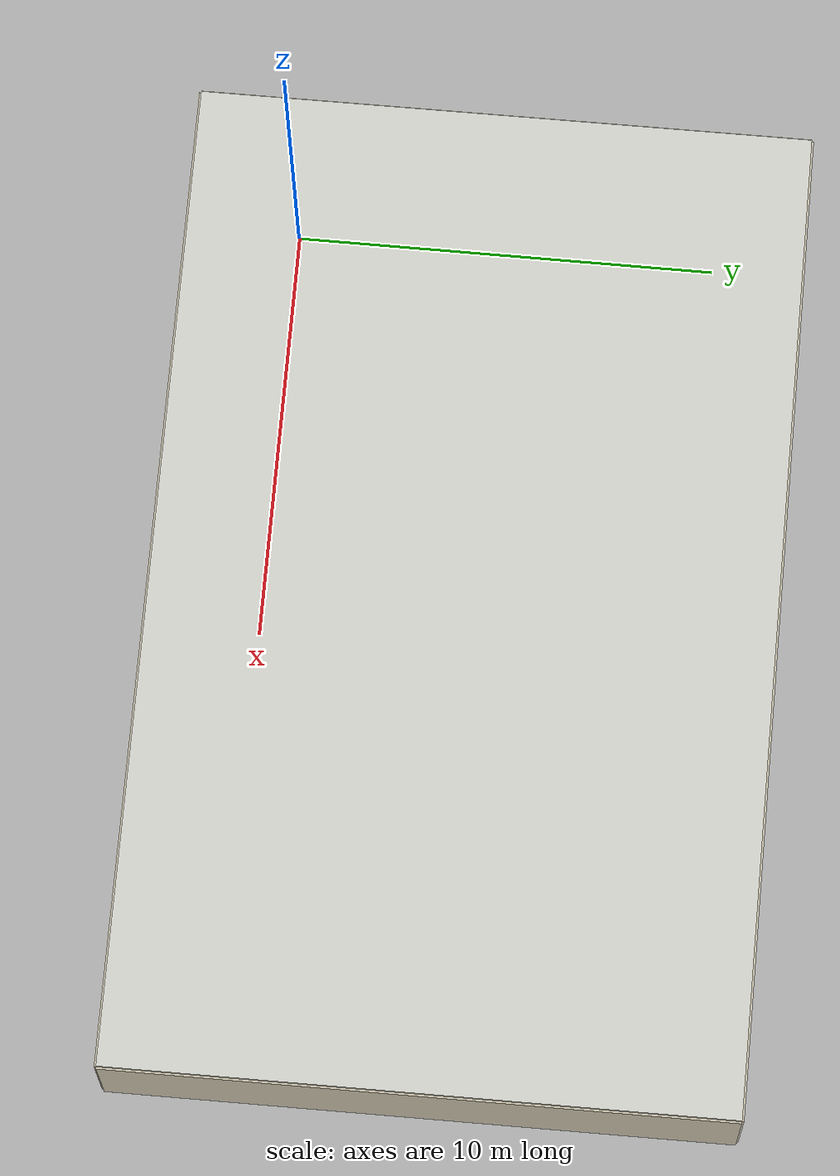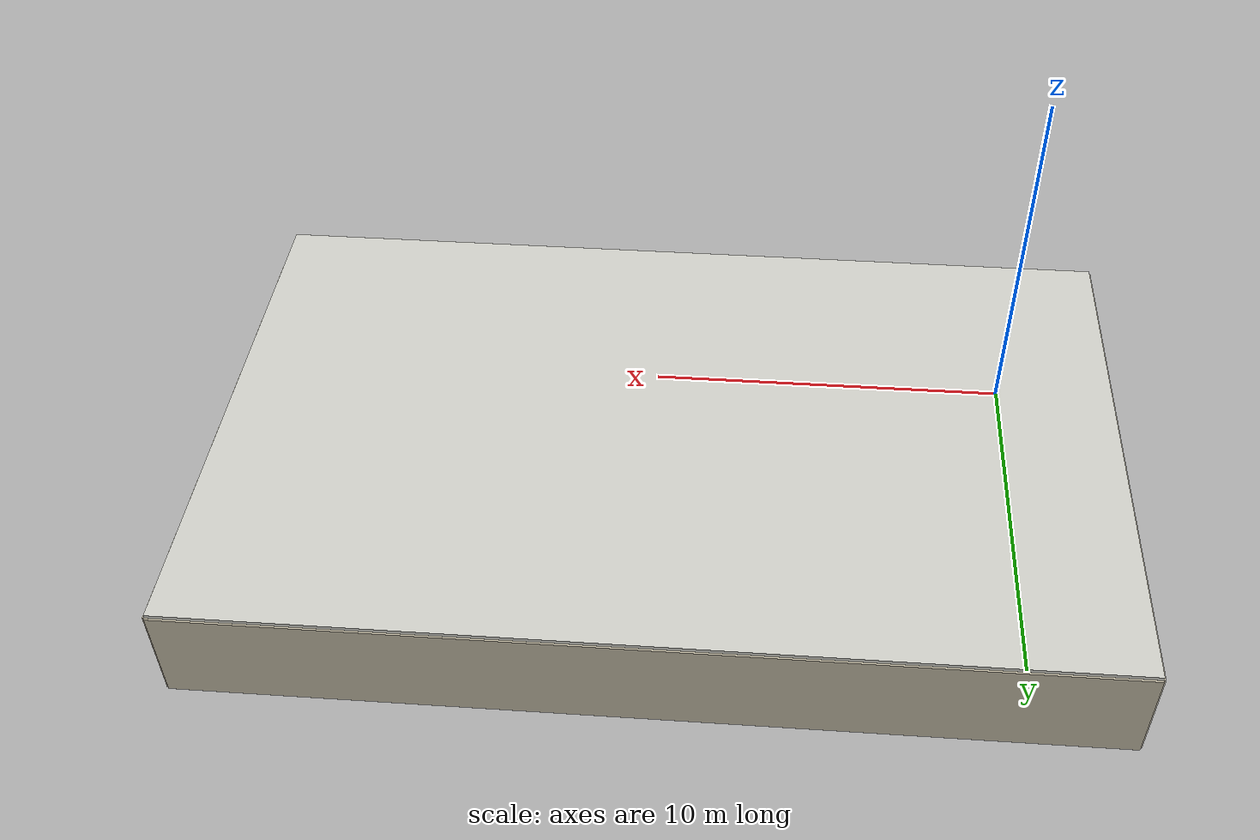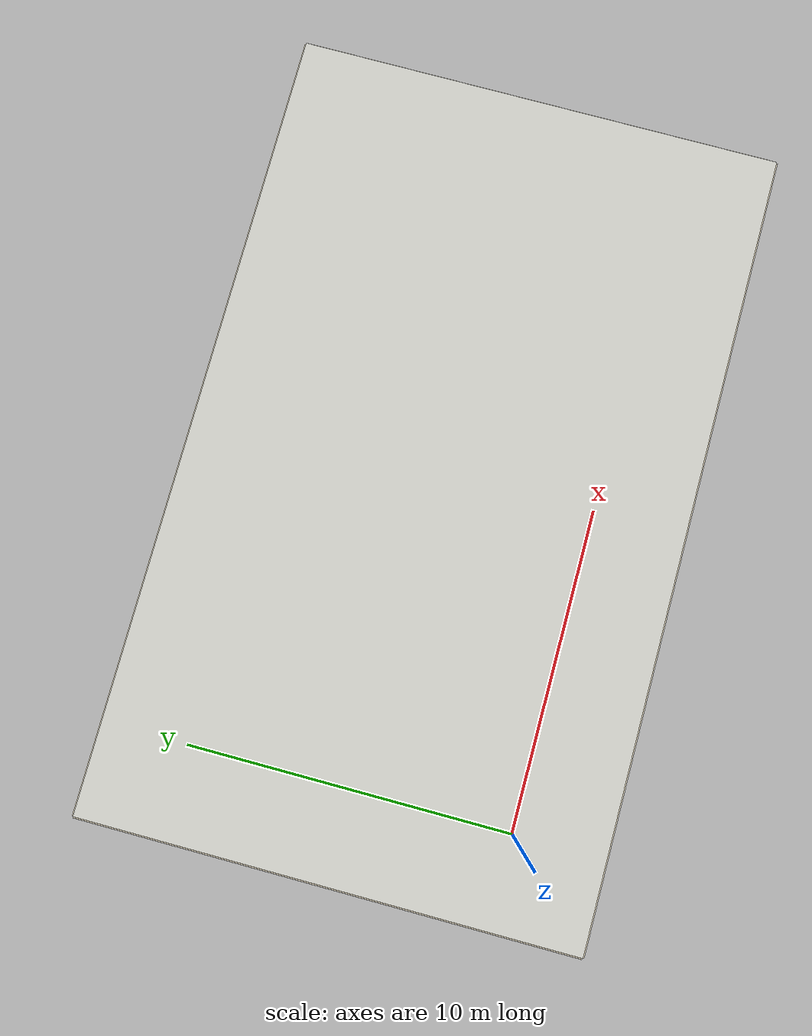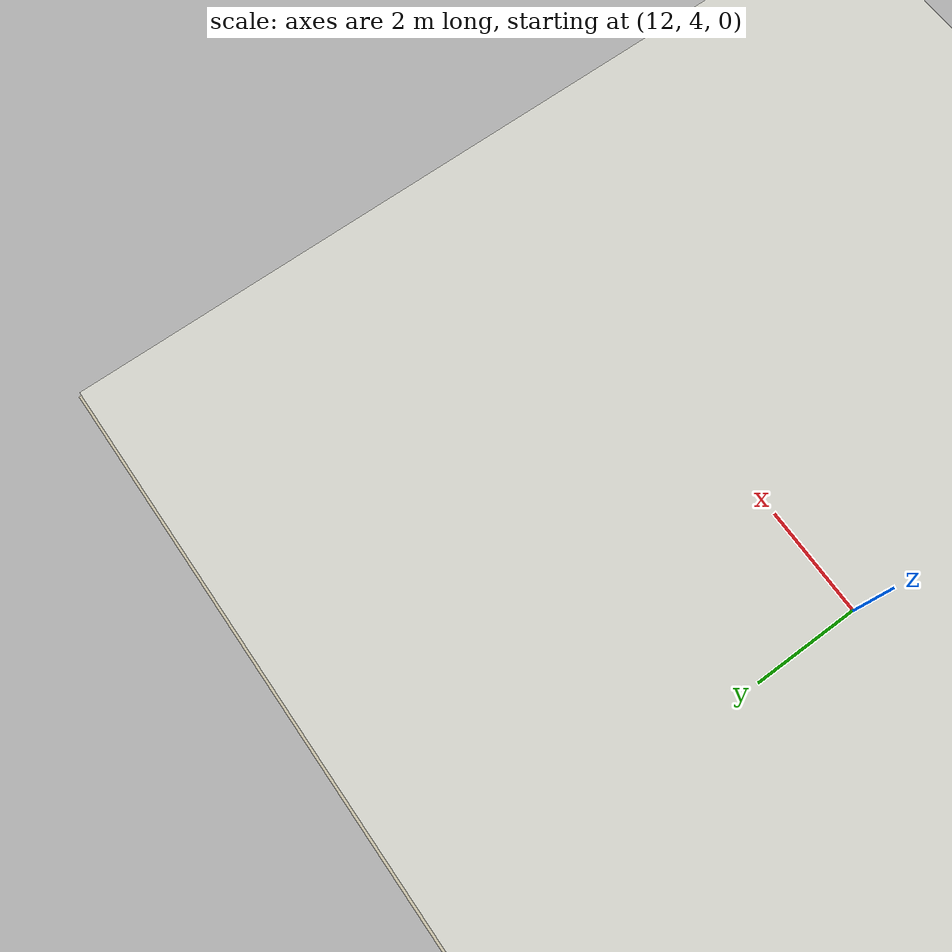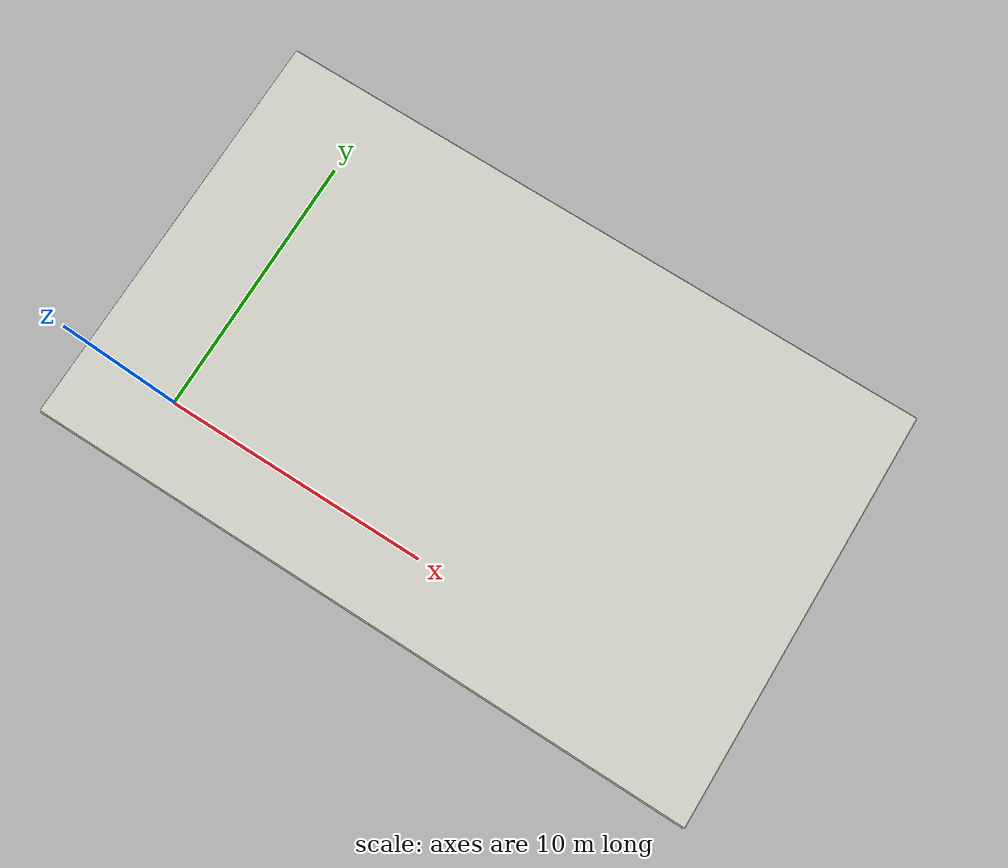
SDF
<?xml version="1.0" ?>
<sdf version='1.7'>
  <world name='default'>
    <plugin name='gazebo_ros_state' filename='libgazebo_ros_state.so'>
      <ros>
        <namespace>/</namespace>
      </ros>
      <update_rate>1000.0</update_rate>
    </plugin>

    <light name='sun' type='directional'>
      <cast_shadows>1</cast_shadows>
      <pose>0 0 10 0 -0 0</pose>
      <diffuse>0.15 0.15 0.14 1</diffuse>
      <specular>0.2 0.2 0.2 1</specular>
      <attenuation>
        <range>1000</range>
        <constant>0.9</constant>
        <linear>0.01</linear>
        <quadratic>0.001</quadratic>
      </attenuation>
      <direction>0.05 0.02 -1.0</direction>
      <spot>
        <inner_angle>0</inner_angle>
        <outer_angle>0</outer_angle>
        <falloff>0</falloff>
      </spot>
    </light>
    <model name='ground_plane'>
      <static>1</static>
      <link name='link'>
        <collision name='collision'>
          <geometry>
            <plane>
              <normal>0 0 1</normal>
              <size>100 100</size>
            </plane>
          </geometry>
          <surface>
            <friction>
              <ode>
                <mu>100</mu>
                <mu2>50</mu2>
              </ode>
              <torsional>
                <ode/>
              </torsional>
            </friction>
            <contact>
              <ode/>
            </contact>
            <bounce/>
          </surface>
          <max_contacts>10</max_contacts>
        </collision>
        <self_collide>0</self_collide>
        <enable_wind>0</enable_wind>
        <kinematic>0</kinematic>
      </link>
    </model>
    <gravity>0 0 -9.8</gravity>
    <magnetic_field>6e-06 2.3e-05 -4.2e-05</magnetic_field>
    <atmosphere type='adiabatic'/>
    <physics type='ode'>
      <max_step_size>0.001</max_step_size>
      <real_time_factor>1</real_time_factor>
      <real_time_update_rate>1000</real_time_update_rate>
    </physics>
    <scene>
      <ambient>0.84 0.84 0.82 1</ambient>
      <background>0.80 0.77 0.68 1</background>
      <shadows>1</shadows>
    </scene>
    <audio>
      <device>default</device>
    </audio>
    <wind/>
    <spherical_coordinates>
      <surface_model>EARTH_WGS84</surface_model>
      <latitude_deg>0</latitude_deg>
      <longitude_deg>0</longitude_deg>
      <elevation>0</elevation>
      <heading_deg>0</heading_deg>
    </spherical_coordinates>
    <model name='lab_16'>
    <static>1</static>
    <pose>0 0 0.001 0 0 0</pose>
    <link name='floor'>
      <visual name='floor_visual'>
        <cast_shadows>0</cast_shadows>
        <geometry><mesh><uri>model://lab_16/meshes/floor.obj</uri></mesh></geometry>
      </visual>
    </link>
    <link name='ducts'>
      <visual name='ducts_visual'>
        <geometry><mesh><uri>model://lab_16/meshes/ducts.obj</uri></mesh></geometry>
      </visual>
      <collision name='ducts_collision'>
        <geometry><mesh><uri>model://lab_16/meshes/ducts.obj</uri></mesh></geometry>
      </collision>
    </link>
    <link name='wall_0'>
      <pose>9.332 12.082 1.350 0 0 0.000</pose>
      <visual name='wall_0_visual'>
        <cast_shadows>0</cast_shadows>
        <geometry><box><size>23.646 0.100 2.700</size></box></geometry>
        <material><ambient>0.80 0.77 0.68 1</ambient><diffuse>0.80 0.77 0.68 1</diffuse></material>
      </visual>
    </link>
    <link name='wall_1'>
      <pose>9.332 -2.497 1.350 0 0 0.000</pose>
      <visual name='wall_1_visual'>
        <cast_shadows>0</cast_shadows>
        <geometry><box><size>23.646 0.100 2.700</size></box></geometry>
        <material><ambient>0.80 0.77 0.68 1</ambient><diffuse>0.80 0.77 0.68 1</diffuse></material>
      </visual>
    </link>
    <link name='wall_2'>
      <pose>-2.491 4.792 1.350 0 0 0.000</pose>
      <visual name='wall_2_visual'>
        <cast_shadows>0</cast_shadows>
        <geometry><box><size>0.100 14.579 2.700</size></box></geometry>
        <material><ambient>0.80 0.77 0.68 1</ambient><diffuse>0.80 0.77 0.68 1</diffuse></material>
      </visual>
    </link>
    <link name='wall_3'>
      <pose>21.155 4.792 1.350 0 0 0.000</pose>
      <visual name='wall_3_visual'>
        <cast_shadows>0</cast_shadows>
        <geometry><box><size>0.100 14.579 2.700</size></box></geometry>
        <material><ambient>0.80 0.77 0.68 1</ambient><diffuse>0.80 0.77 0.68 1</diffuse></material>
      </visual>
    </link>
    <link name='ceiling'>
      <pose>9.332 4.792 2.750 0 0 0.000</pose>
      <visual name='ceiling_visual'>
        <cast_shadows>0</cast_shadows>
        <geometry><box><size>23.646 14.579 0.100</size></box></geometry>
        <material><ambient>0.85 0.85 0.82 1</ambient><diffuse>0.85 0.85 0.82 1</diffuse></material>
      </visual>
    </link>
    <link name='panel_0_0'>
      <pose>-0.991 -0.997 2.690 0 0 0.000</pose>
      <visual name='panel_0_0_visual'>
        <cast_shadows>0</cast_shadows>
        <geometry><box><size>1.200 0.600 0.020</size></box></geometry>
        <material><ambient>1.00 1.00 1.00 1</ambient><diffuse>1.00 1.00 1.00 1</diffuse><emissive>1.00 1.00 1.00 1</emissive></material>
      </visual>
    </link>
    <link name='panel_0_1'>
      <pose>-0.991 1.403 2.690 0 0 0.000</pose>
      <visual name='panel_0_1_visual'>
        <cast_shadows>0</cast_shadows>
        <geometry><box><size>1.200 0.600 0.020</size></box></geometry>
        <material><ambient>1.00 1.00 1.00 1</ambient><diffuse>1.00 1.00 1.00 1</diffuse><emissive>1.00 1.00 1.00 1</emissive></material>
      </visual>
    </link>
    <link name='panel_0_2'>
      <pose>-0.991 3.803 2.690 0 0 0.000</pose>
      <visual name='panel_0_2_visual'>
        <cast_shadows>0</cast_shadows>
        <geometry><box><size>1.200 0.600 0.020</size></box></geometry>
        <material><ambient>1.00 1.00 1.00 1</ambient><diffuse>1.00 1.00 1.00 1</diffuse><emissive>1.00 1.00 1.00 1</emissive></material>
      </visual>
    </link>
    <link name='panel_0_3'>
      <pose>-0.991 6.203 2.690 0 0 0.000</pose>
      <visual name='panel_0_3_visual'>
        <cast_shadows>0</cast_shadows>
        <geometry><box><size>1.200 0.600 0.020</size></box></geometry>
        <material><ambient>1.00 1.00 1.00 1</ambient><diffuse>1.00 1.00 1.00 1</diffuse><emissive>1.00 1.00 1.00 1</emissive></material>
      </visual>
    </link>
    <link name='panel_0_4'>
      <pose>-0.991 8.603 2.690 0 0 0.000</pose>
      <visual name='panel_0_4_visual'>
        <cast_shadows>0</cast_shadows>
        <geometry><box><size>1.200 0.600 0.020</size></box></geometry>
        <material><ambient>1.00 1.00 1.00 1</ambient><diffuse>1.00 1.00 1.00 1</diffuse><emissive>1.00 1.00 1.00 1</emissive></material>
      </visual>
    </link>
    <link name='panel_0_5'>
      <pose>-0.991 11.003 2.690 0 0 0.000</pose>
      <visual name='panel_0_5_visual'>
        <cast_shadows>0</cast_shadows>
        <geometry><box><size>1.200 0.600 0.020</size></box></geometry>
        <material><ambient>1.00 1.00 1.00 1</ambient><diffuse>1.00 1.00 1.00 1</diffuse><emissive>1.00 1.00 1.00 1</emissive></material>
      </visual>
    </link>
    <link name='panel_1_0'>
      <pose>1.409 -0.997 2.690 0 0 0.000</pose>
      <visual name='panel_1_0_visual'>
        <cast_shadows>0</cast_shadows>
        <geometry><box><size>1.200 0.600 0.020</size></box></geometry>
        <material><ambient>1.00 1.00 1.00 1</ambient><diffuse>1.00 1.00 1.00 1</diffuse><emissive>1.00 1.00 1.00 1</emissive></material>
      </visual>
    </link>
    <link name='panel_1_1'>
      <pose>1.409 1.403 2.690 0 0 0.000</pose>
      <visual name='panel_1_1_visual'>
        <cast_shadows>0</cast_shadows>
        <geometry><box><size>1.200 0.600 0.020</size></box></geometry>
        <material><ambient>1.00 1.00 1.00 1</ambient><diffuse>1.00 1.00 1.00 1</diffuse><emissive>1.00 1.00 1.00 1</emissive></material>
      </visual>
    </link>
    <link name='panel_1_2'>
      <pose>1.409 3.803 2.690 0 0 0.000</pose>
      <visual name='panel_1_2_visual'>
        <cast_shadows>0</cast_shadows>
        <geometry><box><size>1.200 0.600 0.020</size></box></geometry>
        <material><ambient>1.00 1.00 1.00 1</ambient><diffuse>1.00 1.00 1.00 1</diffuse><emissive>1.00 1.00 1.00 1</emissive></material>
      </visual>
    </link>
    <link name='panel_1_3'>
      <pose>1.409 6.203 2.690 0 0 0.000</pose>
      <visual name='panel_1_3_visual'>
        <cast_shadows>0</cast_shadows>
        <geometry><box><size>1.200 0.600 0.020</size></box></geometry>
        <material><ambient>1.00 1.00 1.00 1</ambient><diffuse>1.00 1.00 1.00 1</diffuse><emissive>1.00 1.00 1.00 1</emissive></material>
      </visual>
    </link>
    <link name='panel_1_4'>
      <pose>1.409 8.603 2.690 0 0 0.000</pose>
      <visual name='panel_1_4_visual'>
        <cast_shadows>0</cast_shadows>
        <geometry><box><size>1.200 0.600 0.020</size></box></geometry>
        <material><ambient>1.00 1.00 1.00 1</ambient><diffuse>1.00 1.00 1.00 1</diffuse><emissive>1.00 1.00 1.00 1</emissive></material>
      </visual>
    </link>
    <link name='panel_1_5'>
      <pose>1.409 11.003 2.690 0 0 0.000</pose>
      <visual name='panel_1_5_visual'>
        <cast_shadows>0</cast_shadows>
        <geometry><box><size>1.200 0.600 0.020</size></box></geometry>
        <material><ambient>1.00 1.00 1.00 1</ambient><diffuse>1.00 1.00 1.00 1</diffuse><emissive>1.00 1.00 1.00 1</emissive></material>
      </visual>
    </link>
    <link name='panel_2_0'>
      <pose>3.809 -0.997 2.690 0 0 0.000</pose>
      <visual name='panel_2_0_visual'>
        <cast_shadows>0</cast_shadows>
        <geometry><box><size>1.200 0.600 0.020</size></box></geometry>
        <material><ambient>1.00 1.00 1.00 1</ambient><diffuse>1.00 1.00 1.00 1</diffuse><emissive>1.00 1.00 1.00 1</emissive></material>
      </visual>
    </link>
    <link name='panel_2_1'>
      <pose>3.809 1.403 2.690 0 0 0.000</pose>
      <visual name='panel_2_1_visual'>
        <cast_shadows>0</cast_shadows>
        <geometry><box><size>1.200 0.600 0.020</size></box></geometry>
        <material><ambient>1.00 1.00 1.00 1</ambient><diffuse>1.00 1.00 1.00 1</diffuse><emissive>1.00 1.00 1.00 1</emissive></material>
      </visual>
    </link>
    <link name='panel_2_2'>
      <pose>3.809 3.803 2.690 0 0 0.000</pose>
      <visual name='panel_2_2_visual'>
        <cast_shadows>0</cast_shadows>
        <geometry><box><size>1.200 0.600 0.020</size></box></geometry>
        <material><ambient>1.00 1.00 1.00 1</ambient><diffuse>1.00 1.00 1.00 1</diffuse><emissive>1.00 1.00 1.00 1</emissive></material>
      </visual>
    </link>
    <link name='panel_2_3'>
      <pose>3.809 6.203 2.690 0 0 0.000</pose>
      <visual name='panel_2_3_visual'>
        <cast_shadows>0</cast_shadows>
        <geometry><box><size>1.200 0.600 0.020</size></box></geometry>
        <material><ambient>1.00 1.00 1.00 1</ambient><diffuse>1.00 1.00 1.00 1</diffuse><emissive>1.00 1.00 1.00 1</emissive></material>
      </visual>
    </link>
    <link name='panel_2_4'>
      <pose>3.809 8.603 2.690 0 0 0.000</pose>
      <visual name='panel_2_4_visual'>
        <cast_shadows>0</cast_shadows>
        <geometry><box><size>1.200 0.600 0.020</size></box></geometry>
        <material><ambient>1.00 1.00 1.00 1</ambient><diffuse>1.00 1.00 1.00 1</diffuse><emissive>1.00 1.00 1.00 1</emissive></material>
      </visual>
    </link>
    <link name='panel_2_5'>
      <pose>3.809 11.003 2.690 0 0 0.000</pose>
      <visual name='panel_2_5_visual'>
        <cast_shadows>0</cast_shadows>
        <geometry><box><size>1.200 0.600 0.020</size></box></geometry>
        <material><ambient>1.00 1.00 1.00 1</ambient><diffuse>1.00 1.00 1.00 1</diffuse><emissive>1.00 1.00 1.00 1</emissive></material>
      </visual>
    </link>
    <link name='panel_3_0'>
      <pose>6.209 -0.997 2.690 0 0 0.000</pose>
      <visual name='panel_3_0_visual'>
        <cast_shadows>0</cast_shadows>
        <geometry><box><size>1.200 0.600 0.020</size></box></geometry>
        <material><ambient>1.00 1.00 1.00 1</ambient><diffuse>1.00 1.00 1.00 1</diffuse><emissive>1.00 1.00 1.00 1</emissive></material>
      </visual>
    </link>
    <link name='panel_3_1'>
      <pose>6.209 1.403 2.690 0 0 0.000</pose>
      <visual name='panel_3_1_visual'>
        <cast_shadows>0</cast_shadows>
        <geometry><box><size>1.200 0.600 0.020</size></box></geometry>
        <material><ambient>1.00 1.00 1.00 1</ambient><diffuse>1.00 1.00 1.00 1</diffuse><emissive>1.00 1.00 1.00 1</emissive></material>
      </visual>
    </link>
    <link name='panel_3_2'>
      <pose>6.209 3.803 2.690 0 0 0.000</pose>
      <visual name='panel_3_2_visual'>
        <cast_shadows>0</cast_shadows>
        <geometry><box><size>1.200 0.600 0.020</size></box></geometry>
        <material><ambient>1.00 1.00 1.00 1</ambient><diffuse>1.00 1.00 1.00 1</diffuse><emissive>1.00 1.00 1.00 1</emissive></material>
      </visual>
    </link>
    <link name='panel_3_3'>
      <pose>6.209 6.203 2.690 0 0 0.000</pose>
      <visual name='panel_3_3_visual'>
        <cast_shadows>0</cast_shadows>
        <geometry><box><size>1.200 0.600 0.020</size></box></geometry>
        <material><ambient>1.00 1.00 1.00 1</ambient><diffuse>1.00 1.00 1.00 1</diffuse><emissive>1.00 1.00 1.00 1</emissive></material>
      </visual>
    </link>
    <link name='panel_3_4'>
      <pose>6.209 8.603 2.690 0 0 0.000</pose>
      <visual name='panel_3_4_visual'>
        <cast_shadows>0</cast_shadows>
        <geometry><box><size>1.200 0.600 0.020</size></box></geometry>
        <material><ambient>1.00 1.00 1.00 1</ambient><diffuse>1.00 1.00 1.00 1</diffuse><emissive>1.00 1.00 1.00 1</emissive></material>
      </visual>
    </link>
    <link name='panel_3_5'>
      <pose>6.209 11.003 2.690 0 0 0.000</pose>
      <visual name='panel_3_5_visual'>
        <cast_shadows>0</cast_shadows>
        <geometry><box><size>1.200 0.600 0.020</size></box></geometry>
        <material><ambient>1.00 1.00 1.00 1</ambient><diffuse>1.00 1.00 1.00 1</diffuse><emissive>1.00 1.00 1.00 1</emissive></material>
      </visual>
    </link>
    <link name='panel_4_0'>
      <pose>8.609 -0.997 2.690 0 0 0.000</pose>
      <visual name='panel_4_0_visual'>
        <cast_shadows>0</cast_shadows>
        <geometry><box><size>1.200 0.600 0.020</size></box></geometry>
        <material><ambient>1.00 1.00 1.00 1</ambient><diffuse>1.00 1.00 1.00 1</diffuse><emissive>1.00 1.00 1.00 1</emissive></material>
      </visual>
    </link>
    <link name='panel_4_1'>
      <pose>8.609 1.403 2.690 0 0 0.000</pose>
      <visual name='panel_4_1_visual'>
        <cast_shadows>0</cast_shadows>
        <geometry><box><size>1.200 0.600 0.020</size></box></geometry>
        <material><ambient>1.00 1.00 1.00 1</ambient><diffuse>1.00 1.00 1.00 1</diffuse><emissive>1.00 1.00 1.00 1</emissive></material>
      </visual>
    </link>
    <link name='panel_4_2'>
      <pose>8.609 3.803 2.690 0 0 0.000</pose>
      <visual name='panel_4_2_visual'>
        <cast_shadows>0</cast_shadows>
        <geometry><box><size>1.200 0.600 0.020</size></box></geometry>
        <material><ambient>1.00 1.00 1.00 1</ambient><diffuse>1.00 1.00 1.00 1</diffuse><emissive>1.00 1.00 1.00 1</emissive></material>
      </visual>
    </link>
    <link name='panel_4_3'>
      <pose>8.609 6.203 2.690 0 0 0.000</pose>
      <visual name='panel_4_3_visual'>
        <cast_shadows>0</cast_shadows>
        <geometry><box><size>1.200 0.600 0.020</size></box></geometry>
        <material><ambient>1.00 1.00 1.00 1</ambient><diffuse>1.00 1.00 1.00 1</diffuse><emissive>1.00 1.00 1.00 1</emissive></material>
      </visual>
    </link>
    <link name='panel_4_4'>
      <pose>8.609 8.603 2.690 0 0 0.000</pose>
      <visual name='panel_4_4_visual'>
        <cast_shadows>0</cast_shadows>
        <geometry><box><size>1.200 0.600 0.020</size></box></geometry>
        <material><ambient>1.00 1.00 1.00 1</ambient><diffuse>1.00 1.00 1.00 1</diffuse><emissive>1.00 1.00 1.00 1</emissive></material>
      </visual>
    </link>
    <link name='panel_4_5'>
      <pose>8.609 11.003 2.690 0 0 0.000</pose>
      <visual name='panel_4_5_visual'>
        <cast_shadows>0</cast_shadows>
        <geometry><box><size>1.200 0.600 0.020</size></box></geometry>
        <material><ambient>1.00 1.00 1.00 1</ambient><diffuse>1.00 1.00 1.00 1</diffuse><emissive>1.00 1.00 1.00 1</emissive></material>
      </visual>
    </link>
    <link name='panel_5_0'>
      <pose>11.009 -0.997 2.690 0 0 0.000</pose>
      <visual name='panel_5_0_visual'>
        <cast_shadows>0</cast_shadows>
        <geometry><box><size>1.200 0.600 0.020</size></box></geometry>
        <material><ambient>1.00 1.00 1.00 1</ambient><diffuse>1.00 1.00 1.00 1</diffuse><emissive>1.00 1.00 1.00 1</emissive></material>
      </visual>
    </link>
    <link name='panel_5_1'>
      <pose>11.009 1.403 2.690 0 0 0.000</pose>
      <visual name='panel_5_1_visual'>
        <cast_shadows>0</cast_shadows>
        <geometry><box><size>1.200 0.600 0.020</size></box></geometry>
        <material><ambient>1.00 1.00 1.00 1</ambient><diffuse>1.00 1.00 1.00 1</diffuse><emissive>1.00 1.00 1.00 1</emissive></material>
      </visual>
    </link>
    <link name='panel_5_2'>
      <pose>11.009 3.803 2.690 0 0 0.000</pose>
      <visual name='panel_5_2_visual'>
        <cast_shadows>0</cast_shadows>
        <geometry><box><size>1.200 0.600 0.020</size></box></geometry>
        <material><ambient>1.00 1.00 1.00 1</ambient><diffuse>1.00 1.00 1.00 1</diffuse><emissive>1.00 1.00 1.00 1</emissive></material>
      </visual>
    </link>
    <link name='panel_5_3'>
      <pose>11.009 6.203 2.690 0 0 0.000</pose>
      <visual name='panel_5_3_visual'>
        <cast_shadows>0</cast_shadows>
        <geometry><box><size>1.200 0.600 0.020</size></box></geometry>
        <material><ambient>1.00 1.00 1.00 1</ambient><diffuse>1.00 1.00 1.00 1</diffuse><emissive>1.00 1.00 1.00 1</emissive></material>
      </visual>
    </link>
    <link name='panel_5_4'>
      <pose>11.009 8.603 2.690 0 0 0.000</pose>
      <visual name='panel_5_4_visual'>
        <cast_shadows>0</cast_shadows>
        <geometry><box><size>1.200 0.600 0.020</size></box></geometry>
        <material><ambient>1.00 1.00 1.00 1</ambient><diffuse>1.00 1.00 1.00 1</diffuse><emissive>1.00 1.00 1.00 1</emissive></material>
      </visual>
    </link>
    <link name='panel_5_5'>
      <pose>11.009 11.003 2.690 0 0 0.000</pose>
      <visual name='panel_5_5_visual'>
        <cast_shadows>0</cast_shadows>
        <geometry><box><size>1.200 0.600 0.020</size></box></geometry>
        <material><ambient>1.00 1.00 1.00 1</ambient><diffuse>1.00 1.00 1.00 1</diffuse><emissive>1.00 1.00 1.00 1</emissive></material>
      </visual>
    </link>
    <link name='panel_6_0'>
      <pose>13.409 -0.997 2.690 0 0 0.000</pose>
      <visual name='panel_6_0_visual'>
        <cast_shadows>0</cast_shadows>
        <geometry><box><size>1.200 0.600 0.020</size></box></geometry>
        <material><ambient>1.00 1.00 1.00 1</ambient><diffuse>1.00 1.00 1.00 1</diffuse><emissive>1.00 1.00 1.00 1</emissive></material>
      </visual>
    </link>
    <link name='panel_6_1'>
      <pose>13.409 1.403 2.690 0 0 0.000</pose>
      <visual name='panel_6_1_visual'>
        <cast_shadows>0</cast_shadows>
        <geometry><box><size>1.200 0.600 0.020</size></box></geometry>
        <material><ambient>1.00 1.00 1.00 1</ambient><diffuse>1.00 1.00 1.00 1</diffuse><emissive>1.00 1.00 1.00 1</emissive></material>
      </visual>
    </link>
    <link name='panel_6_2'>
      <pose>13.409 3.803 2.690 0 0 0.000</pose>
      <visual name='panel_6_2_visual'>
        <cast_shadows>0</cast_shadows>
        <geometry><box><size>1.200 0.600 0.020</size></box></geometry>
        <material><ambient>1.00 1.00 1.00 1</ambient><diffuse>1.00 1.00 1.00 1</diffuse><emissive>1.00 1.00 1.00 1</emissive></material>
      </visual>
    </link>
    <link name='panel_6_3'>
      <pose>13.409 6.203 2.690 0 0 0.000</pose>
      <visual name='panel_6_3_visual'>
        <cast_shadows>0</cast_shadows>
        <geometry><box><size>1.200 0.600 0.020</size></box></geometry>
        <material><ambient>1.00 1.00 1.00 1</ambient><diffuse>1.00 1.00 1.00 1</diffuse><emissive>1.00 1.00 1.00 1</emissive></material>
      </visual>
    </link>
    <link name='panel_6_4'>
      <pose>13.409 8.603 2.690 0 0 0.000</pose>
      <visual name='panel_6_4_visual'>
        <cast_shadows>0</cast_shadows>
        <geometry><box><size>1.200 0.600 0.020</size></box></geometry>
        <material><ambient>1.00 1.00 1.00 1</ambient><diffuse>1.00 1.00 1.00 1</diffuse><emissive>1.00 1.00 1.00 1</emissive></material>
      </visual>
    </link>
    <link name='panel_6_5'>
      <pose>13.409 11.003 2.690 0 0 0.000</pose>
      <visual name='panel_6_5_visual'>
        <cast_shadows>0</cast_shadows>
        <geometry><box><size>1.200 0.600 0.020</size></box></geometry>
        <material><ambient>1.00 1.00 1.00 1</ambient><diffuse>1.00 1.00 1.00 1</diffuse><emissive>1.00 1.00 1.00 1</emissive></material>
      </visual>
    </link>
    <link name='panel_7_0'>
      <pose>15.809 -0.997 2.690 0 0 0.000</pose>
      <visual name='panel_7_0_visual'>
        <cast_shadows>0</cast_shadows>
        <geometry><box><size>1.200 0.600 0.020</size></box></geometry>
        <material><ambient>1.00 1.00 1.00 1</ambient><diffuse>1.00 1.00 1.00 1</diffuse><emissive>1.00 1.00 1.00 1</emissive></material>
      </visual>
    </link>
    <link name='panel_7_1'>
      <pose>15.809 1.403 2.690 0 0 0.000</pose>
      <visual name='panel_7_1_visual'>
        <cast_shadows>0</cast_shadows>
        <geometry><box><size>1.200 0.600 0.020</size></box></geometry>
        <material><ambient>1.00 1.00 1.00 1</ambient><diffuse>1.00 1.00 1.00 1</diffuse><emissive>1.00 1.00 1.00 1</emissive></material>
      </visual>
    </link>
    <link name='panel_7_2'>
      <pose>15.809 3.803 2.690 0 0 0.000</pose>
      <visual name='panel_7_2_visual'>
        <cast_shadows>0</cast_shadows>
        <geometry><box><size>1.200 0.600 0.020</size></box></geometry>
        <material><ambient>1.00 1.00 1.00 1</ambient><diffuse>1.00 1.00 1.00 1</diffuse><emissive>1.00 1.00 1.00 1</emissive></material>
      </visual>
    </link>
    <link name='panel_7_3'>
      <pose>15.809 6.203 2.690 0 0 0.000</pose>
      <visual name='panel_7_3_visual'>
        <cast_shadows>0</cast_shadows>
        <geometry><box><size>1.200 0.600 0.020</size></box></geometry>
        <material><ambient>1.00 1.00 1.00 1</ambient><diffuse>1.00 1.00 1.00 1</diffuse><emissive>1.00 1.00 1.00 1</emissive></material>
      </visual>
    </link>
    <link name='panel_7_4'>
      <pose>15.809 8.603 2.690 0 0 0.000</pose>
      <visual name='panel_7_4_visual'>
        <cast_shadows>0</cast_shadows>
        <geometry><box><size>1.200 0.600 0.020</size></box></geometry>
        <material><ambient>1.00 1.00 1.00 1</ambient><diffuse>1.00 1.00 1.00 1</diffuse><emissive>1.00 1.00 1.00 1</emissive></material>
      </visual>
    </link>
    <link name='panel_7_5'>
      <pose>15.809 11.003 2.690 0 0 0.000</pose>
      <visual name='panel_7_5_visual'>
        <cast_shadows>0</cast_shadows>
        <geometry><box><size>1.200 0.600 0.020</size></box></geometry>
        <material><ambient>1.00 1.00 1.00 1</ambient><diffuse>1.00 1.00 1.00 1</diffuse><emissive>1.00 1.00 1.00 1</emissive></material>
      </visual>
    </link>
    <link name='panel_8_0'>
      <pose>18.209 -0.997 2.690 0 0 0.000</pose>
      <visual name='panel_8_0_visual'>
        <cast_shadows>0</cast_shadows>
        <geometry><box><size>1.200 0.600 0.020</size></box></geometry>
        <material><ambient>1.00 1.00 1.00 1</ambient><diffuse>1.00 1.00 1.00 1</diffuse><emissive>1.00 1.00 1.00 1</emissive></material>
      </visual>
    </link>
    <link name='panel_8_1'>
      <pose>18.209 1.403 2.690 0 0 0.000</pose>
      <visual name='panel_8_1_visual'>
        <cast_shadows>0</cast_shadows>
        <geometry><box><size>1.200 0.600 0.020</size></box></geometry>
        <material><ambient>1.00 1.00 1.00 1</ambient><diffuse>1.00 1.00 1.00 1</diffuse><emissive>1.00 1.00 1.00 1</emissive></material>
      </visual>
    </link>
    <link name='panel_8_2'>
      <pose>18.209 3.803 2.690 0 0 0.000</pose>
      <visual name='panel_8_2_visual'>
        <cast_shadows>0</cast_shadows>
        <geometry><box><size>1.200 0.600 0.020</size></box></geometry>
        <material><ambient>1.00 1.00 1.00 1</ambient><diffuse>1.00 1.00 1.00 1</diffuse><emissive>1.00 1.00 1.00 1</emissive></material>
      </visual>
    </link>
    <link name='panel_8_3'>
      <pose>18.209 6.203 2.690 0 0 0.000</pose>
      <visual name='panel_8_3_visual'>
        <cast_shadows>0</cast_shadows>
        <geometry><box><size>1.200 0.600 0.020</size></box></geometry>
        <material><ambient>1.00 1.00 1.00 1</ambient><diffuse>1.00 1.00 1.00 1</diffuse><emissive>1.00 1.00 1.00 1</emissive></material>
      </visual>
    </link>
    <link name='panel_8_4'>
      <pose>18.209 8.603 2.690 0 0 0.000</pose>
      <visual name='panel_8_4_visual'>
        <cast_shadows>0</cast_shadows>
        <geometry><box><size>1.200 0.600 0.020</size></box></geometry>
        <material><ambient>1.00 1.00 1.00 1</ambient><diffuse>1.00 1.00 1.00 1</diffuse><emissive>1.00 1.00 1.00 1</emissive></material>
      </visual>
    </link>
    <link name='panel_8_5'>
      <pose>18.209 11.003 2.690 0 0 0.000</pose>
      <visual name='panel_8_5_visual'>
        <cast_shadows>0</cast_shadows>
        <geometry><box><size>1.200 0.600 0.020</size></box></geometry>
        <material><ambient>1.00 1.00 1.00 1</ambient><diffuse>1.00 1.00 1.00 1</diffuse><emissive>1.00 1.00 1.00 1</emissive></material>
      </visual>
    </link>
    <link name='p0'>
      <pose>-0.797 11.772 0.650 0 0 0.000</pose>
      <visual name='p0_visual'>
        <cast_shadows>0</cast_shadows>
        <geometry><box><size>0.900 0.500 1.300</size></box></geometry>
        <material><ambient>0.25 0.33 0.36 1</ambient><diffuse>0.25 0.33 0.36 1</diffuse></material>
      </visual>
    </link>
    <link name='p1'>
      <pose>0.917 11.772 0.650 0 0 0.000</pose>
      <visual name='p1_visual'>
        <cast_shadows>0</cast_shadows>
        <geometry><box><size>0.900 0.500 1.300</size></box></geometry>
        <material><ambient>0.25 0.33 0.36 1</ambient><diffuse>0.25 0.33 0.36 1</diffuse></material>
      </visual>
    </link>
    <link name='p2'>
      <pose>2.553 11.797 0.925 0 0 0.000</pose>
      <visual name='p2_visual'>
        <cast_shadows>0</cast_shadows>
        <geometry><box><size>0.300 0.450 1.850</size></box></geometry>
        <material><ambient>0.55 0.57 0.58 1</ambient><diffuse>0.55 0.57 0.58 1</diffuse></material>
      </visual>
    </link>
    <link name='p3'>
      <pose>2.863 11.797 0.925 0 0 0.000</pose>
      <visual name='p3_visual'>
        <cast_shadows>0</cast_shadows>
        <geometry><box><size>0.300 0.450 1.850</size></box></geometry>
        <material><ambient>0.55 0.57 0.58 1</ambient><diffuse>0.55 0.57 0.58 1</diffuse></material>
      </visual>
    </link>
    <link name='p4'>
      <pose>3.173 11.797 0.925 0 0 0.000</pose>
      <visual name='p4_visual'>
        <cast_shadows>0</cast_shadows>
        <geometry><box><size>0.300 0.450 1.850</size></box></geometry>
        <material><ambient>0.55 0.57 0.58 1</ambient><diffuse>0.55 0.57 0.58 1</diffuse></material>
      </visual>
    </link>
    <link name='p5'>
      <pose>3.483 11.797 0.925 0 0 0.000</pose>
      <visual name='p5_visual'>
        <cast_shadows>0</cast_shadows>
        <geometry><box><size>0.300 0.450 1.850</size></box></geometry>
        <material><ambient>0.55 0.57 0.58 1</ambient><diffuse>0.55 0.57 0.58 1</diffuse></material>
      </visual>
    </link>
    <link name='p6'>
      <pose>6.983 11.797 0.925 0 0 0.000</pose>
      <visual name='p6_visual'>
        <cast_shadows>0</cast_shadows>
        <geometry><box><size>0.300 0.450 1.850</size></box></geometry>
        <material><ambient>0.55 0.57 0.58 1</ambient><diffuse>0.55 0.57 0.58 1</diffuse></material>
      </visual>
    </link>
    <link name='p7'>
      <pose>7.293 11.797 0.925 0 0 0.000</pose>
      <visual name='p7_visual'>
        <cast_shadows>0</cast_shadows>
        <geometry><box><size>0.300 0.450 1.850</size></box></geometry>
        <material><ambient>0.55 0.57 0.58 1</ambient><diffuse>0.55 0.57 0.58 1</diffuse></material>
      </visual>
    </link>
    <link name='p8'>
      <pose>7.603 11.797 0.925 0 0 0.000</pose>
      <visual name='p8_visual'>
        <cast_shadows>0</cast_shadows>
        <geometry><box><size>0.300 0.450 1.850</size></box></geometry>
        <material><ambient>0.55 0.57 0.58 1</ambient><diffuse>0.55 0.57 0.58 1</diffuse></material>
      </visual>
    </link>
    <link name='p9'>
      <pose>7.913 11.797 0.925 0 0 0.000</pose>
      <visual name='p9_visual'>
        <cast_shadows>0</cast_shadows>
        <geometry><box><size>0.300 0.450 1.850</size></box></geometry>
        <material><ambient>0.55 0.57 0.58 1</ambient><diffuse>0.55 0.57 0.58 1</diffuse></material>
      </visual>
    </link>
    <link name='p10'>
      <pose>8.223 11.797 0.925 0 0 0.000</pose>
      <visual name='p10_visual'>
        <cast_shadows>0</cast_shadows>
        <geometry><box><size>0.300 0.450 1.850</size></box></geometry>
        <material><ambient>0.55 0.57 0.58 1</ambient><diffuse>0.55 0.57 0.58 1</diffuse></material>
      </visual>
    </link>
    <link name='p11'>
      <pose>9.042 11.647 0.375 0 0 0.000</pose>
      <visual name='p11_visual'>
        <cast_shadows>0</cast_shadows>
        <geometry><box><size>1.500 0.750 0.750</size></box></geometry>
        <material><ambient>0.32 0.32 0.33 1</ambient><diffuse>0.32 0.32 0.33 1</diffuse></material>
      </visual>
    </link>
    <link name='p12'>
      <pose>11.751 11.647 0.375 0 0 0.000</pose>
      <visual name='p12_visual'>
        <cast_shadows>0</cast_shadows>
        <geometry><box><size>1.500 0.750 0.750</size></box></geometry>
        <material><ambient>0.32 0.32 0.33 1</ambient><diffuse>0.32 0.32 0.33 1</diffuse></material>
      </visual>
    </link>
    <link name='p13'>
      <pose>14.530 11.647 0.375 0 0 0.000</pose>
      <visual name='p13_visual'>
        <cast_shadows>0</cast_shadows>
        <geometry><box><size>1.500 0.750 0.750</size></box></geometry>
        <material><ambient>0.32 0.32 0.33 1</ambient><diffuse>0.32 0.32 0.33 1</diffuse></material>
      </visual>
    </link>
    <link name='p14'>
      <pose>16.439 11.797 0.925 0 0 0.000</pose>
      <visual name='p14_visual'>
        <cast_shadows>0</cast_shadows>
        <geometry><box><size>0.300 0.450 1.850</size></box></geometry>
        <material><ambient>0.55 0.57 0.58 1</ambient><diffuse>0.55 0.57 0.58 1</diffuse></material>
      </visual>
    </link>
    <link name='p15'>
      <pose>16.749 11.797 0.925 0 0 0.000</pose>
      <visual name='p15_visual'>
        <cast_shadows>0</cast_shadows>
        <geometry><box><size>0.300 0.450 1.850</size></box></geometry>
        <material><ambient>0.55 0.57 0.58 1</ambient><diffuse>0.55 0.57 0.58 1</diffuse></material>
      </visual>
    </link>
    <link name='p16'>
      <pose>17.059 11.797 0.925 0 0 0.000</pose>
      <visual name='p16_visual'>
        <cast_shadows>0</cast_shadows>
        <geometry><box><size>0.300 0.450 1.850</size></box></geometry>
        <material><ambient>0.55 0.57 0.58 1</ambient><diffuse>0.55 0.57 0.58 1</diffuse></material>
      </visual>
    </link>
    <link name='p17'>
      <pose>17.369 11.797 0.925 0 0 0.000</pose>
      <visual name='p17_visual'>
        <cast_shadows>0</cast_shadows>
        <geometry><box><size>0.300 0.450 1.850</size></box></geometry>
        <material><ambient>0.55 0.57 0.58 1</ambient><diffuse>0.55 0.57 0.58 1</diffuse></material>
      </visual>
    </link>
    <link name='p18'>
      <pose>17.679 11.797 0.925 0 0 0.000</pose>
      <visual name='p18_visual'>
        <cast_shadows>0</cast_shadows>
        <geometry><box><size>0.300 0.450 1.850</size></box></geometry>
        <material><ambient>0.55 0.57 0.58 1</ambient><diffuse>0.55 0.57 0.58 1</diffuse></material>
      </visual>
    </link>
    <link name='p19'>
      <pose>17.989 11.797 0.925 0 0 0.000</pose>
      <visual name='p19_visual'>
        <cast_shadows>0</cast_shadows>
        <geometry><box><size>0.300 0.450 1.850</size></box></geometry>
        <material><ambient>0.55 0.57 0.58 1</ambient><diffuse>0.55 0.57 0.58 1</diffuse></material>
      </visual>
    </link>
    <link name='p20'>
      <pose>20.845 0.654 0.650 0 0 0.000</pose>
      <visual name='p20_visual'>
        <cast_shadows>0</cast_shadows>
        <geometry><box><size>0.500 0.900 1.300</size></box></geometry>
        <material><ambient>0.25 0.33 0.36 1</ambient><diffuse>0.25 0.33 0.36 1</diffuse></material>
      </visual>
    </link>
    <link name='p21'>
      <pose>20.870 2.671 0.925 0 0 0.000</pose>
      <visual name='p21_visual'>
        <cast_shadows>0</cast_shadows>
        <geometry><box><size>0.450 0.300 1.850</size></box></geometry>
        <material><ambient>0.55 0.57 0.58 1</ambient><diffuse>0.55 0.57 0.58 1</diffuse></material>
      </visual>
    </link>
    <link name='p22'>
      <pose>20.870 2.981 0.925 0 0 0.000</pose>
      <visual name='p22_visual'>
        <cast_shadows>0</cast_shadows>
        <geometry><box><size>0.450 0.300 1.850</size></box></geometry>
        <material><ambient>0.55 0.57 0.58 1</ambient><diffuse>0.55 0.57 0.58 1</diffuse></material>
      </visual>
    </link>
    <link name='p23'>
      <pose>20.870 3.291 0.925 0 0 0.000</pose>
      <visual name='p23_visual'>
        <cast_shadows>0</cast_shadows>
        <geometry><box><size>0.450 0.300 1.850</size></box></geometry>
        <material><ambient>0.55 0.57 0.58 1</ambient><diffuse>0.55 0.57 0.58 1</diffuse></material>
      </visual>
    </link>
    <link name='p24'>
      <pose>20.870 3.601 0.925 0 0 0.000</pose>
      <visual name='p24_visual'>
        <cast_shadows>0</cast_shadows>
        <geometry><box><size>0.450 0.300 1.850</size></box></geometry>
        <material><ambient>0.55 0.57 0.58 1</ambient><diffuse>0.55 0.57 0.58 1</diffuse></material>
      </visual>
    </link>
    <link name='p25'>
      <pose>20.845 5.354 0.650 0 0 0.000</pose>
      <visual name='p25_visual'>
        <cast_shadows>0</cast_shadows>
        <geometry><box><size>0.500 0.900 1.300</size></box></geometry>
        <material><ambient>0.25 0.33 0.36 1</ambient><diffuse>0.25 0.33 0.36 1</diffuse></material>
      </visual>
    </link>
    <link name='p26'>
      <pose>20.870 7.853 0.925 0 0 0.000</pose>
      <visual name='p26_visual'>
        <cast_shadows>0</cast_shadows>
        <geometry><box><size>0.450 0.300 1.850</size></box></geometry>
        <material><ambient>0.55 0.57 0.58 1</ambient><diffuse>0.55 0.57 0.58 1</diffuse></material>
      </visual>
    </link>
    <link name='p27'>
      <pose>20.870 8.163 0.925 0 0 0.000</pose>
      <visual name='p27_visual'>
        <cast_shadows>0</cast_shadows>
        <geometry><box><size>0.450 0.300 1.850</size></box></geometry>
        <material><ambient>0.55 0.57 0.58 1</ambient><diffuse>0.55 0.57 0.58 1</diffuse></material>
      </visual>
    </link>
    <link name='p28'>
      <pose>20.870 8.473 0.925 0 0 0.000</pose>
      <visual name='p28_visual'>
        <cast_shadows>0</cast_shadows>
        <geometry><box><size>0.450 0.300 1.850</size></box></geometry>
        <material><ambient>0.55 0.57 0.58 1</ambient><diffuse>0.55 0.57 0.58 1</diffuse></material>
      </visual>
    </link>
    <link name='p29'>
      <pose>20.870 8.783 0.925 0 0 0.000</pose>
      <visual name='p29_visual'>
        <cast_shadows>0</cast_shadows>
        <geometry><box><size>0.450 0.300 1.850</size></box></geometry>
        <material><ambient>0.55 0.57 0.58 1</ambient><diffuse>0.55 0.57 0.58 1</diffuse></material>
      </visual>
    </link>
    <link name='p30'>
      <pose>20.870 9.093 0.925 0 0 0.000</pose>
      <visual name='p30_visual'>
        <cast_shadows>0</cast_shadows>
        <geometry><box><size>0.450 0.300 1.850</size></box></geometry>
        <material><ambient>0.55 0.57 0.58 1</ambient><diffuse>0.55 0.57 0.58 1</diffuse></material>
      </visual>
    </link>
    <link name='p31'>
      <pose>20.870 9.403 0.925 0 0 0.000</pose>
      <visual name='p31_visual'>
        <cast_shadows>0</cast_shadows>
        <geometry><box><size>0.450 0.300 1.850</size></box></geometry>
        <material><ambient>0.55 0.57 0.58 1</ambient><diffuse>0.55 0.57 0.58 1</diffuse></material>
      </visual>
    </link>
    <link name='p32'>
      <pose>20.870 9.713 0.925 0 0 0.000</pose>
      <visual name='p32_visual'>
        <cast_shadows>0</cast_shadows>
        <geometry><box><size>0.450 0.300 1.850</size></box></geometry>
        <material><ambient>0.55 0.57 0.58 1</ambient><diffuse>0.55 0.57 0.58 1</diffuse></material>
      </visual>
    </link>
    <link name='p33'>
      <pose>20.870 10.023 0.925 0 0 0.000</pose>
      <visual name='p33_visual'>
        <cast_shadows>0</cast_shadows>
        <geometry><box><size>0.450 0.300 1.850</size></box></geometry>
        <material><ambient>0.55 0.57 0.58 1</ambient><diffuse>0.55 0.57 0.58 1</diffuse></material>
      </visual>
    </link>
    <link name='p34'>
      <pose>0.976 -2.187 0.650 0 0 0.000</pose>
      <visual name='p34_visual'>
        <cast_shadows>0</cast_shadows>
        <geometry><box><size>0.900 0.500 1.300</size></box></geometry>
        <material><ambient>0.25 0.33 0.36 1</ambient><diffuse>0.25 0.33 0.36 1</diffuse></material>
      </visual>
    </link>
    <link name='p35'>
      <pose>3.419 -2.412 0.375 0 0 0.000</pose>
      <visual name='p35_visual'>
        <cast_shadows>0</cast_shadows>
        <geometry><box><size>1.800 0.050 0.750</size></box></geometry>
        <material><ambient>0.93 0.93 0.92 1</ambient><diffuse>0.93 0.93 0.92 1</diffuse></material>
      </visual>
    </link>
    <link name='p36'>
      <pose>6.269 -2.062 0.375 0 0 0.000</pose>
      <visual name='p36_visual'>
        <cast_shadows>0</cast_shadows>
        <geometry><box><size>1.500 0.750 0.750</size></box></geometry>
        <material><ambient>0.32 0.32 0.33 1</ambient><diffuse>0.32 0.32 0.33 1</diffuse></material>
      </visual>
    </link>
    <link name='p37'>
      <pose>8.775 -2.062 0.375 0 0 0.000</pose>
      <visual name='p37_visual'>
        <cast_shadows>0</cast_shadows>
        <geometry><box><size>1.500 0.750 0.750</size></box></geometry>
        <material><ambient>0.32 0.32 0.33 1</ambient><diffuse>0.32 0.32 0.33 1</diffuse></material>
      </visual>
    </link>
    <link name='p38'>
      <pose>10.964 -2.187 0.650 0 0 0.000</pose>
      <visual name='p38_visual'>
        <cast_shadows>0</cast_shadows>
        <geometry><box><size>0.900 0.500 1.300</size></box></geometry>
        <material><ambient>0.25 0.33 0.36 1</ambient><diffuse>0.25 0.33 0.36 1</diffuse></material>
      </visual>
    </link>
    <link name='p39'>
      <pose>12.827 -2.062 0.375 0 0 0.000</pose>
      <visual name='p39_visual'>
        <cast_shadows>0</cast_shadows>
        <geometry><box><size>1.500 0.750 0.750</size></box></geometry>
        <material><ambient>0.32 0.32 0.33 1</ambient><diffuse>0.32 0.32 0.33 1</diffuse></material>
      </visual>
    </link>
    <link name='p40'>
      <pose>15.606 -2.187 0.650 0 0 0.000</pose>
      <visual name='p40_visual'>
        <cast_shadows>0</cast_shadows>
        <geometry><box><size>0.900 0.500 1.300</size></box></geometry>
        <material><ambient>0.25 0.33 0.36 1</ambient><diffuse>0.25 0.33 0.36 1</diffuse></material>
      </visual>
    </link>
    <link name='p41'>
      <pose>18.322 -2.187 0.650 0 0 0.000</pose>
      <visual name='p41_visual'>
        <cast_shadows>0</cast_shadows>
        <geometry><box><size>0.900 0.500 1.300</size></box></geometry>
        <material><ambient>0.25 0.33 0.36 1</ambient><diffuse>0.25 0.33 0.36 1</diffuse></material>
      </visual>
    </link>
    <link name='p42'>
      <pose>-2.206 1.004 0.925 0 0 0.000</pose>
      <visual name='p42_visual'>
        <cast_shadows>0</cast_shadows>
        <geometry><box><size>0.450 0.300 1.850</size></box></geometry>
        <material><ambient>0.55 0.57 0.58 1</ambient><diffuse>0.55 0.57 0.58 1</diffuse></material>
      </visual>
    </link>
    <link name='p43'>
      <pose>-2.206 1.314 0.925 0 0 0.000</pose>
      <visual name='p43_visual'>
        <cast_shadows>0</cast_shadows>
        <geometry><box><size>0.450 0.300 1.850</size></box></geometry>
        <material><ambient>0.55 0.57 0.58 1</ambient><diffuse>0.55 0.57 0.58 1</diffuse></material>
      </visual>
    </link>
    <link name='p44'>
      <pose>-2.206 1.624 0.925 0 0 0.000</pose>
      <visual name='p44_visual'>
        <cast_shadows>0</cast_shadows>
        <geometry><box><size>0.450 0.300 1.850</size></box></geometry>
        <material><ambient>0.55 0.57 0.58 1</ambient><diffuse>0.55 0.57 0.58 1</diffuse></material>
      </visual>
    </link>
    <link name='p45'>
      <pose>-2.206 1.934 0.925 0 0 0.000</pose>
      <visual name='p45_visual'>
        <cast_shadows>0</cast_shadows>
        <geometry><box><size>0.450 0.300 1.850</size></box></geometry>
        <material><ambient>0.55 0.57 0.58 1</ambient><diffuse>0.55 0.57 0.58 1</diffuse></material>
      </visual>
    </link>
    <link name='p46'>
      <pose>-2.206 2.244 0.925 0 0 0.000</pose>
      <visual name='p46_visual'>
        <cast_shadows>0</cast_shadows>
        <geometry><box><size>0.450 0.300 1.850</size></box></geometry>
        <material><ambient>0.55 0.57 0.58 1</ambient><diffuse>0.55 0.57 0.58 1</diffuse></material>
      </visual>
    </link>
    <link name='p47'>
      <pose>-2.206 3.730 0.925 0 0 0.000</pose>
      <visual name='p47_visual'>
        <cast_shadows>0</cast_shadows>
        <geometry><box><size>0.450 0.300 1.850</size></box></geometry>
        <material><ambient>0.55 0.57 0.58 1</ambient><diffuse>0.55 0.57 0.58 1</diffuse></material>
      </visual>
    </link>
    <link name='p48'>
      <pose>-2.206 4.040 0.925 0 0 0.000</pose>
      <visual name='p48_visual'>
        <cast_shadows>0</cast_shadows>
        <geometry><box><size>0.450 0.300 1.850</size></box></geometry>
        <material><ambient>0.55 0.57 0.58 1</ambient><diffuse>0.55 0.57 0.58 1</diffuse></material>
      </visual>
    </link>
    <link name='p49'>
      <pose>-2.206 4.350 0.925 0 0 0.000</pose>
      <visual name='p49_visual'>
        <cast_shadows>0</cast_shadows>
        <geometry><box><size>0.450 0.300 1.850</size></box></geometry>
        <material><ambient>0.55 0.57 0.58 1</ambient><diffuse>0.55 0.57 0.58 1</diffuse></material>
      </visual>
    </link>
    <link name='p50'>
      <pose>-2.206 4.660 0.925 0 0 0.000</pose>
      <visual name='p50_visual'>
        <cast_shadows>0</cast_shadows>
        <geometry><box><size>0.450 0.300 1.850</size></box></geometry>
        <material><ambient>0.55 0.57 0.58 1</ambient><diffuse>0.55 0.57 0.58 1</diffuse></material>
      </visual>
    </link>
    <link name='p51'>
      <pose>-2.206 4.970 0.925 0 0 0.000</pose>
      <visual name='p51_visual'>
        <cast_shadows>0</cast_shadows>
        <geometry><box><size>0.450 0.300 1.850</size></box></geometry>
        <material><ambient>0.55 0.57 0.58 1</ambient><diffuse>0.55 0.57 0.58 1</diffuse></material>
      </visual>
    </link>
    <link name='p52'>
      <pose>-2.206 5.280 0.925 0 0 0.000</pose>
      <visual name='p52_visual'>
        <cast_shadows>0</cast_shadows>
        <geometry><box><size>0.450 0.300 1.850</size></box></geometry>
        <material><ambient>0.55 0.57 0.58 1</ambient><diffuse>0.55 0.57 0.58 1</diffuse></material>
      </visual>
    </link>
    <link name='p53'>
      <pose>-2.206 6.221 0.925 0 0 0.000</pose>
      <visual name='p53_visual'>
        <cast_shadows>0</cast_shadows>
        <geometry><box><size>0.450 0.300 1.850</size></box></geometry>
        <material><ambient>0.55 0.57 0.58 1</ambient><diffuse>0.55 0.57 0.58 1</diffuse></material>
      </visual>
    </link>
    <link name='p54'>
      <pose>-2.206 6.531 0.925 0 0 0.000</pose>
      <visual name='p54_visual'>
        <cast_shadows>0</cast_shadows>
        <geometry><box><size>0.450 0.300 1.850</size></box></geometry>
        <material><ambient>0.55 0.57 0.58 1</ambient><diffuse>0.55 0.57 0.58 1</diffuse></material>
      </visual>
    </link>
    <link name='p55'>
      <pose>-2.206 6.841 0.925 0 0 0.000</pose>
      <visual name='p55_visual'>
        <cast_shadows>0</cast_shadows>
        <geometry><box><size>0.450 0.300 1.850</size></box></geometry>
        <material><ambient>0.55 0.57 0.58 1</ambient><diffuse>0.55 0.57 0.58 1</diffuse></material>
      </visual>
    </link>
    <link name='p56'>
      <pose>-2.206 7.151 0.925 0 0 0.000</pose>
      <visual name='p56_visual'>
        <cast_shadows>0</cast_shadows>
        <geometry><box><size>0.450 0.300 1.850</size></box></geometry>
        <material><ambient>0.55 0.57 0.58 1</ambient><diffuse>0.55 0.57 0.58 1</diffuse></material>
      </visual>
    </link>
    <link name='p57'>
      <pose>-2.206 7.461 0.925 0 0 0.000</pose>
      <visual name='p57_visual'>
        <cast_shadows>0</cast_shadows>
        <geometry><box><size>0.450 0.300 1.850</size></box></geometry>
        <material><ambient>0.55 0.57 0.58 1</ambient><diffuse>0.55 0.57 0.58 1</diffuse></material>
      </visual>
    </link>
    <link name='p58'>
      <pose>-2.206 7.771 0.925 0 0 0.000</pose>
      <visual name='p58_visual'>
        <cast_shadows>0</cast_shadows>
        <geometry><box><size>0.450 0.300 1.850</size></box></geometry>
        <material><ambient>0.55 0.57 0.58 1</ambient><diffuse>0.55 0.57 0.58 1</diffuse></material>
      </visual>
    </link>
    <link name='p59'>
      <pose>-2.206 8.081 0.925 0 0 0.000</pose>
      <visual name='p59_visual'>
        <cast_shadows>0</cast_shadows>
        <geometry><box><size>0.450 0.300 1.850</size></box></geometry>
        <material><ambient>0.55 0.57 0.58 1</ambient><diffuse>0.55 0.57 0.58 1</diffuse></material>
      </visual>
    </link>
    <link name='p60'>
      <pose>-2.206 8.391 0.925 0 0 0.000</pose>
      <visual name='p60_visual'>
        <cast_shadows>0</cast_shadows>
        <geometry><box><size>0.450 0.300 1.850</size></box></geometry>
        <material><ambient>0.55 0.57 0.58 1</ambient><diffuse>0.55 0.57 0.58 1</diffuse></material>
      </visual>
    </link>
    <link name='p61'>
      <pose>-2.206 9.319 0.925 0 0 0.000</pose>
      <visual name='p61_visual'>
        <cast_shadows>0</cast_shadows>
        <geometry><box><size>0.450 0.300 1.850</size></box></geometry>
        <material><ambient>0.55 0.57 0.58 1</ambient><diffuse>0.55 0.57 0.58 1</diffuse></material>
      </visual>
    </link>
    <link name='p62'>
      <pose>-2.206 9.629 0.925 0 0 0.000</pose>
      <visual name='p62_visual'>
        <cast_shadows>0</cast_shadows>
        <geometry><box><size>0.450 0.300 1.850</size></box></geometry>
        <material><ambient>0.55 0.57 0.58 1</ambient><diffuse>0.55 0.57 0.58 1</diffuse></material>
      </visual>
    </link>
    <link name='p63'>
      <pose>-2.206 9.939 0.925 0 0 0.000</pose>
      <visual name='p63_visual'>
        <cast_shadows>0</cast_shadows>
        <geometry><box><size>0.450 0.300 1.850</size></box></geometry>
        <material><ambient>0.55 0.57 0.58 1</ambient><diffuse>0.55 0.57 0.58 1</diffuse></material>
      </visual>
    </link>
    <link name='p64'>
      <pose>-2.206 10.249 0.925 0 0 0.000</pose>
      <visual name='p64_visual'>
        <cast_shadows>0</cast_shadows>
        <geometry><box><size>0.450 0.300 1.850</size></box></geometry>
        <material><ambient>0.55 0.57 0.58 1</ambient><diffuse>0.55 0.57 0.58 1</diffuse></material>
      </visual>
    </link>
    <link name='p65'>
      <pose>-2.206 10.559 0.925 0 0 0.000</pose>
      <visual name='p65_visual'>
        <cast_shadows>0</cast_shadows>
        <geometry><box><size>0.450 0.300 1.850</size></box></geometry>
        <material><ambient>0.55 0.57 0.58 1</ambient><diffuse>0.55 0.57 0.58 1</diffuse></material>
      </visual>
    </link>
    <link name='p66'>
      <pose>-2.206 10.869 0.925 0 0 0.000</pose>
      <visual name='p66_visual'>
        <cast_shadows>0</cast_shadows>
        <geometry><box><size>0.450 0.300 1.850</size></box></geometry>
        <material><ambient>0.55 0.57 0.58 1</ambient><diffuse>0.55 0.57 0.58 1</diffuse></material>
      </visual>
    </link>
    <link name='p67'>
      <pose>-2.206 11.179 0.925 0 0 0.000</pose>
      <visual name='p67_visual'>
        <cast_shadows>0</cast_shadows>
        <geometry><box><size>0.450 0.300 1.850</size></box></geometry>
        <material><ambient>0.55 0.57 0.58 1</ambient><diffuse>0.55 0.57 0.58 1</diffuse></material>
      </visual>
    </link>
  </model>
  </world>
</sdf>
